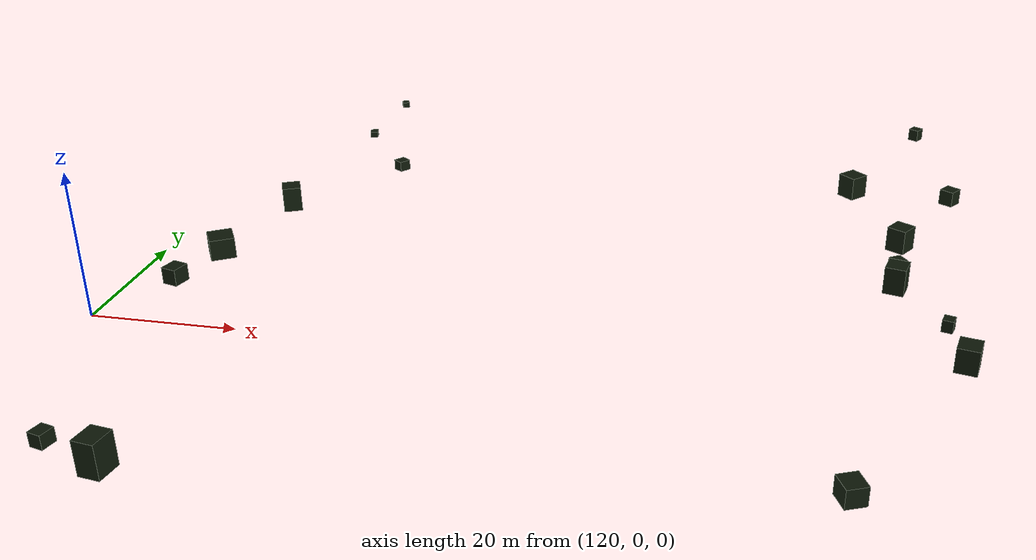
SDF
<?xml version="1.0" ?>
<sdf version="1.9">
  <model name="avian_final_vegetation">
    <static>true</static>
    <pose>0 0 0 0 0 0</pose>
    <link name="link">
      <visual name="ENV_BANKVEG_001_visual">
        <pose>224.906250 39.847330 1.750167 0 0 0.997149</pose>
        <geometry>
          <box>
            <size>2.941101 2.835400 3.577826</size>
          </box>
        </geometry>
        <material>
          <ambient>0.023 0.041 0.015 1</ambient>
          <diffuse>0.058 0.102 0.038 1</diffuse>
          <specular>0.1 0.1 0.1 1</specular>
        </material>
      </visual>
      <visual name="ENV_BANKVEG_002_visual">
        <pose>216.692520 -20.015977 0.098535 0 0 1.973143</pose>
        <geometry>
          <box>
            <size>2.831696 2.643892 2.479668</size>
          </box>
        </geometry>
        <material>
          <ambient>0.023 0.041 0.015 1</ambient>
          <diffuse>0.058 0.102 0.038 1</diffuse>
          <specular>0.1 0.1 0.1 1</specular>
        </material>
      </visual>
      <visual name="ENV_BANKVEG_003_visual">
        <pose>126.149040 11.129840 1.217423 0 0 2.876053</pose>
        <geometry>
          <box>
            <size>2.298599 2.534032 2.403438</size>
          </box>
        </geometry>
        <material>
          <ambient>0.023 0.041 0.015 1</ambient>
          <diffuse>0.058 0.102 0.038 1</diffuse>
          <specular>0.1 0.1 0.1 1</specular>
        </material>
      </visual>
      <visual name="ENV_BANKVEG_004_visual">
        <pose>224.318336 33.325647 0.702309 0 0 -2.553648</pose>
        <geometry>
          <box>
            <size>1.867111 1.931797 1.475609</size>
          </box>
        </geometry>
        <material>
          <ambient>0.023 0.041 0.015 1</ambient>
          <diffuse>0.058 0.102 0.038 1</diffuse>
          <specular>0.1 0.1 0.1 1</specular>
        </material>
      </visual>
      <visual name="ENV_BANKVEG_005_visual">
        <pose>133.374748 91.358280 -0.565844 0 0 -2.706906</pose>
        <geometry>
          <box>
            <size>1.249039 1.329323 0.963629</size>
          </box>
        </geometry>
        <material>
          <ambient>0.023 0.041 0.015 1</ambient>
          <diffuse>0.058 0.102 0.038 1</diffuse>
          <specular>0.1 0.1 0.1 1</specular>
        </material>
      </visual>
      <visual name="ENV_BANKVEG_006_visual">
        <pose>230.956657 6.832373 1.754477 0 0 2.907476</pose>
        <geometry>
          <box>
            <size>2.825150 3.137181 3.380666</size>
          </box>
        </geometry>
        <material>
          <ambient>0.023 0.041 0.015 1</ambient>
          <diffuse>0.058 0.102 0.038 1</diffuse>
          <specular>0.1 0.1 0.1 1</specular>
        </material>
      </visual>
      <visual name="ENV_BANKVEG_007_visual">
        <pose>132.084801 38.013411 1.910338 0 0 -2.712780</pose>
        <geometry>
          <box>
            <size>2.750504 2.930630 3.786783</size>
          </box>
        </geometry>
        <material>
          <ambient>0.023 0.041 0.015 1</ambient>
          <diffuse>0.058 0.102 0.038 1</diffuse>
          <specular>0.1 0.1 0.1 1</specular>
        </material>
      </visual>
      <visual name="ENV_BANKVEG_008_visual">
        <pose>230.784950 90.314972 -0.028101 0 0 2.561922</pose>
        <geometry>
          <box>
            <size>1.704941 1.766617 2.004538</size>
          </box>
        </geometry>
        <material>
          <ambient>0.023 0.041 0.015 1</ambient>
          <diffuse>0.058 0.102 0.038 1</diffuse>
          <specular>0.1 0.1 0.1 1</specular>
        </material>
      </visual>
      <visual name="ENV_BANKVEG_009_visual">
        <pose>130.026451 -26.814157 0.498508 0 0 1.321792</pose>
        <geometry>
          <box>
            <size>2.060562 1.862062 1.889000</size>
          </box>
        </geometry>
        <material>
          <ambient>0.023 0.041 0.015 1</ambient>
          <diffuse>0.058 0.102 0.038 1</diffuse>
          <specular>0.1 0.1 0.1 1</specular>
        </material>
      </visual>
      <visual name="ENV_BANKVEG_010_visual">
        <pose>218.667427 60.944433 0.995057 0 0 -0.778385</pose>
        <geometry>
          <box>
            <size>3.053329 3.056973 3.620775</size>
          </box>
        </geometry>
        <material>
          <ambient>0.023 0.041 0.015 1</ambient>
          <diffuse>0.058 0.102 0.038 1</diffuse>
          <specular>0.1 0.1 0.1 1</specular>
        </material>
      </visual>
      <visual name="ENV_BANKVEG_011_visual">
        <pose>133.646248 72.061497 0.260892 0 0 0.211497</pose>
        <geometry>
          <box>
            <size>1.251083 1.396782 1.014295</size>
          </box>
        </geometry>
        <material>
          <ambient>0.023 0.041 0.015 1</ambient>
          <diffuse>0.058 0.102 0.038 1</diffuse>
          <specular>0.1 0.1 0.1 1</specular>
        </material>
      </visual>
      <visual name="ENV_BANKVEG_012_visual">
        <pose>233.663162 58.635994 1.100863 0 0 -0.622923</pose>
        <geometry>
          <box>
            <size>2.220917 2.283775 2.411221</size>
          </box>
        </geometry>
        <material>
          <ambient>0.023 0.041 0.015 1</ambient>
          <diffuse>0.058 0.102 0.038 1</diffuse>
          <specular>0.1 0.1 0.1 1</specular>
        </material>
      </visual>
      <visual name="ENV_BANKVEG_013_visual">
        <pose>142.992935 59.383856 -0.225372 0 0 -0.662067</pose>
        <geometry>
          <box>
            <size>1.821747 1.860592 1.669376</size>
          </box>
        </geometry>
        <material>
          <ambient>0.023 0.041 0.015 1</ambient>
          <diffuse>0.058 0.102 0.038 1</diffuse>
          <specular>0.1 0.1 0.1 1</specular>
        </material>
      </visual>
      <visual name="ENV_BANKVEG_014_visual">
        <pose>223.589699 26.426512 1.903883 0 0 1.317176</pose>
        <geometry>
          <box>
            <size>3.132126 2.833412 3.900318</size>
          </box>
        </geometry>
        <material>
          <ambient>0.023 0.041 0.015 1</ambient>
          <diffuse>0.058 0.102 0.038 1</diffuse>
          <specular>0.1 0.1 0.1 1</specular>
        </material>
      </visual>
      <visual name="ENV_BANKVEG_015_visual">
        <pose>138.376457 -29.890182 1.564832 0 0 -1.719176</pose>
        <geometry>
          <box>
            <size>3.198074 2.819126 4.547978</size>
          </box>
        </geometry>
        <material>
          <ambient>0.023 0.041 0.015 1</ambient>
          <diffuse>0.058 0.102 0.038 1</diffuse>
          <specular>0.1 0.1 0.1 1</specular>
        </material>
      </visual>
      <visual name="ENV_BANKVEG_016_visual">
        <pose>229.603775 16.201023 0.891887 0 0 2.852748</pose>
        <geometry>
          <box>
            <size>1.486847 1.630623 1.716336</size>
          </box>
        </geometry>
        <material>
          <ambient>0.023 0.041 0.015 1</ambient>
          <diffuse>0.058 0.102 0.038 1</diffuse>
          <specular>0.1 0.1 0.1 1</specular>
        </material>
      </visual>
      <visual name="ENV_BANKVEG_017_visual">
        <pose>128.645821 20.275531 1.550797 0 0 -2.592299</pose>
        <geometry>
          <box>
            <size>3.521774 3.669027 3.071691</size>
          </box>
        </geometry>
        <material>
          <ambient>0.023 0.041 0.015 1</ambient>
          <diffuse>0.058 0.102 0.038 1</diffuse>
          <specular>0.1 0.1 0.1 1</specular>
        </material>
      </visual>
    </link>
  </model>
</sdf>
